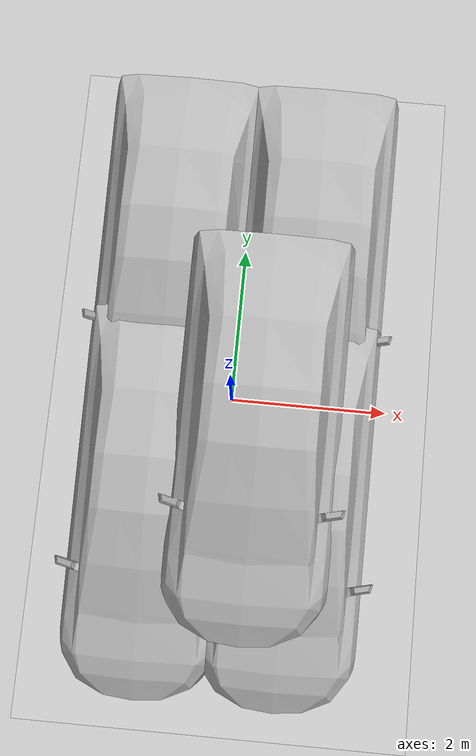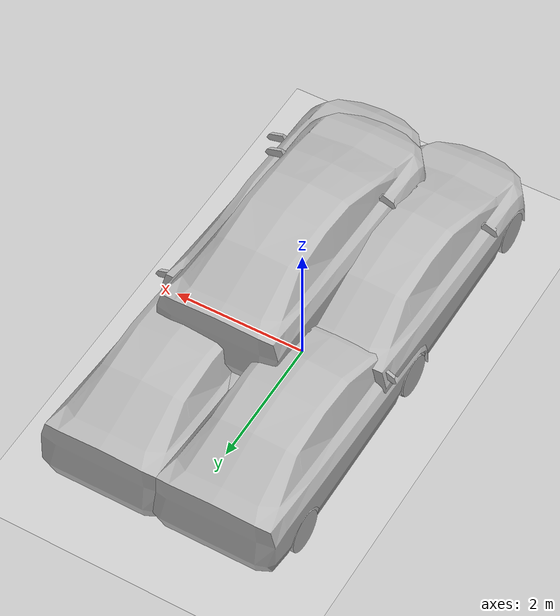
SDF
<?xml version="1.0" ?>
<sdf version="1.10">
    <world name="car_world">
        <physics name="1ms" type="ignored">
            <max_step_size>0.001</max_step_size>
            <real_time_factor>1.0</real_time_factor>
        </physics>
        <plugin
            filename="gz-sim-physics-system"
            name="gz::sim::systems::Physics">
        </plugin>
        <plugin
            filename="gz-sim-user-commands-system"
            name="gz::sim::systems::UserCommands">
        </plugin>
        <plugin
            filename="gz-sim-scene-broadcaster-system"
            name="gz::sim::systems::SceneBroadcaster">
        </plugin>

        <light type="directional" name="sun">
            <cast_shadows>true</cast_shadows>
            <pose>0 0 10 0 0 0</pose>
            <diffuse>0.8 0.8 0.8 1</diffuse>
            <specular>0.2 0.2 0.2 1</specular>
            <attenuation>
                <range>1000</range>
                <constant>0.9</constant>
                <linear>0.01</linear>
                <quadratic>0.001</quadratic>
            </attenuation>
            <direction>-0.5 0.1 -0.9</direction>
        </light>

        <model name="ground_plane">
            <static>true</static>
            <link name="link">
                <collision name="collision">
                <geometry>
                    <plane>
                    <normal>0 0 1</normal>
                    </plane>
                </geometry>
                </collision>
                <visual name="visual">
                <geometry>
                    <plane>
                    <normal>0 0 1</normal>
                    <size>100 100</size>
                    </plane>
                </geometry>
                <material>
                    <ambient>0.8 0.8 0.8 1</ambient>
                    <diffuse>0.8 0.8 0.8 1</diffuse>
                    <specular>0.8 0.8 0.8 1</specular>
                </material>
                </visual>
            </link>
        </model>

        <include>
            <uri>./prius_hybrid</uri>
        </include>
    </world>
</sdf>

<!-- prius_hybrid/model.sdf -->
<sdf version="1.6">
  <model name="prius_hybrid">
    <pose>0 0 0.03 0 0 0</pose>
    <!-- Ackermann Steering -->
    <plugin
      filename="gz-sim-ackermann-steering-system"
      name="gz::sim::systems::AckermannSteering">
      <left_joint>front_left_wheel_joint</left_joint>
      <left_joint>rear_left_wheel_joint</left_joint>
      <right_joint>front_right_wheel_joint</right_joint>
      <right_joint>rear_right_wheel_joint</right_joint>
      <left_steering_joint>front_left_wheel_steering_joint</left_steering_joint>
      <right_steering_joint>front_right_wheel_steering_joint</right_steering_joint>
      <kingpin_width>2.0</kingpin_width>
      <steering_limit>0.5</steering_limit>
      <wheel_base>2.86</wheel_base>
      <wheel_separation>1.52</wheel_separation>
      <wheel_radius>0.31265</wheel_radius>
      <min_velocity>-1</min_velocity>
      <max_velocity>1</max_velocity>
      <min_acceleration>-3</min_acceleration>
      <max_acceleration>3</max_acceleration>
    </plugin>
    <!-- Moving Forward-->
    <plugin filename="gz-sim-triggered-publisher-system"
      name="gz::sim::systems::TriggeredPublisher">
      <input type="gz.msgs.Int32" topic="/keyboard/keypress">
        <match field="data">16777235</match>
      </input>
      <output type="gz.msgs.Twist" topic="/cmd_vel">
        linear: {x: 0.5}, angular: {z: 0.0}
      </output>
    </plugin>
    <!-- Moving Backward-->
    <plugin filename="gz-sim-triggered-publisher-system"
      name="gz::sim::systems::TriggeredPublisher">
      <input type="gz.msgs.Int32" topic="/keyboard/keypress">
        <match field="data">16777237</match>
      </input>
      <output type="gz.msgs.Twist" topic="/cmd_vel">
        linear: {x: -0.5}, angular: {z: 0.0}
      </output>
    </plugin>
    <!-- Moving Left-->
    <plugin filename="gz-sim-triggered-publisher-system"
      name="gz::sim::systems::TriggeredPublisher">
      <input type="gz.msgs.Int32" topic="/keyboard/keypress">
        <match field="data">16777234</match>
      </input>
      <output type="gz.msgs.Twist" topic="/cmd_vel">
        linear: {x: 0.0}, angular: {z: 0.5}
      </output>
    </plugin>
    <!-- Moving Right-->
    <plugin filename="gz-sim-triggered-publisher-system"
      name="gz::sim::systems::TriggeredPublisher">
      <input type="gz.msgs.Int32" topic="/keyboard/keypress">
        <match field="data">16777236</match>
      </input>
      <output type="gz.msgs.Twist" topic="/cmd_vel">
        linear: {x: 0.0}, angular: {z: -0.5}
      </output>
    </plugin>

    <link name="chassis">
      <inertial>
        <mass>1326.0</mass>
        <pose>0 -0.266 0.48 0 0 0</pose>
        <inertia>
          <ixx>2581.13354740</ixx>
          <ixy>0.0</ixy>
          <iyy>591.30846112</iyy>
          <ixz>0.0</ixz>
          <iyz>0.0</iyz>
          <izz>2681.95008628</izz>
        </inertia>
      </inertial>

      <visual name="chassis_visual">
        <geometry>
          <mesh>
            <uri>model://prius_hybrid/meshes/Hybrid.obj</uri>
            <scale>0.01 0.01 0.01</scale>
            <submesh>
              <name>Hybrid</name>
              <center>false</center>
            </submesh>
          </mesh>
        </geometry>
      </visual>

      <visual name="interior_visual">
        <geometry>
          <mesh>
            <uri>model://prius_hybrid/meshes/Hybrid.obj</uri>
            <scale>0.01 0.01 0.01</scale>
            <submesh>
              <name>Hybrid_Interior</name>
              <center>false</center>
            </submesh>
          </mesh>
        </geometry>
      </visual>

      <visual name="windows_visual">
        <geometry>
          <mesh>
            <uri>model://prius_hybrid/meshes/Hybrid.obj</uri>
            <scale>0.01 0.01 0.01</scale>
            <submesh>
              <name>Hybrid_Windows</name>
              <center>false</center>
            </submesh>
          </mesh>
        </geometry>
      </visual>

      <collision name="chassis">
        <pose>0.0 0.05 0.625 0 0 0</pose>
        <geometry>
          <box>
            <size>1.7526 2.1 0.95</size>
          </box>
        </geometry>
      </collision>

      <collision name="front_bumper">
        <pose>0.0 -2.0 0.458488 0.0 0 0</pose>
        <geometry>
          <box>
            <size>1.337282 0.48 0.566691</size>
          </box>
        </geometry>
      </collision>

      <collision name="hood">
        <pose>0.0 -1.900842 0.676305 0.341247 0 0</pose>
        <geometry>
          <box>
            <size>1.597968 0.493107 0.265468</size>
          </box>
        </geometry>
      </collision>

      <collision name="windshield">
        <pose>0.0 -0.875105 1.032268 0.335476 0 0</pose>
        <geometry>
          <box>
            <size>1.168381 1.654253 0.272347</size>
          </box>
        </geometry>
      </collision>

      <collision name="top_front">
        <pose>0.0 0.161236 1.386042 0.135030 0 0</pose>
        <geometry>
          <box>
            <size>1.279154 0.625988 0.171868</size>
          </box>
        </geometry>
      </collision>

      <collision name="top_rear">
        <pose>0.0 0.817696 1.360069 -0.068997 0 0</pose>
        <geometry>
          <box>
            <size>1.285130 0.771189 0.226557</size>
          </box>
        </geometry>
      </collision>

      <collision name="rear_window">
        <pose>0.0 1.640531 1.175126 -0.262017 0 0</pose>
        <geometry>
          <box>
            <size>1.267845 1.116344 0.244286</size>
          </box>
        </geometry>
      </collision>

      <collision name="trunk">
        <pose>0.0 1.637059 0.888180 0.0 0 0</pose>
        <geometry>
          <box>
            <size>1.788064 1.138988 0.482746</size>
          </box>
        </geometry>
      </collision>

      <collision name="back_bumper">
        <pose>0.0 2.054454 0.577870 0.0 0 0</pose>
        <geometry>
          <box>
            <size>1.781650 0.512093 0.581427</size>
          </box>
        </geometry>
      </collision>
    </link>

    <link name="steering_wheel">
      <pose>0.357734 -0.627868 0.988243 -1.302101 0 0</pose>
      <inertial>
        <mass>1.0</mass>
        <inertia>
          <ixx>0.14583300</ixx>
          <ixy>0</ixy>
          <ixz>0</ixz>
          <iyy>0.14583300</iyy>
          <iyz>0</iyz>
          <izz>0.12500000</izz>
        </inertia>
      </inertial>
      <collision name="collision">
        <geometry>
          <cylinder>
            <radius>0.178172</radius>
            <length>0.041845</length>
          </cylinder>
        </geometry>
        <surface>
          <contact>
            <ode>
              <min_depth>0.003</min_depth>
            </ode>
          </contact>
        </surface>
      </collision>
      <visual name="visual">
        <pose>0 0 0 1.302101 0 0</pose>
        <geometry>
          <mesh>
            <uri>model://prius_hybrid/meshes/Hybrid.obj</uri>
            <scale>0.01 0.01 0.01</scale>
            <submesh>
              <name>Steering_Wheel</name>
              <center>true</center>
            </submesh>
          </mesh>
        </geometry>
      </visual>
    </link>

    <link name="front_left_wheel">
      <pose>0.76 -1.41 0.3 0 0 0</pose>
      <inertial>
        <mass>11</mass>
        <inertia>
          <ixx>0.58631238</ixx>
          <ixy>0.0</ixy>
          <iyy>0.33552910</iyy>
          <ixz>0.0</ixz>
          <iyz>0.0</iyz>
          <izz>0.33552910</izz>
        </inertia>
      </inertial>

      <visual name="visual">
        <pose>0.04 0.0 0.0 0 0 0</pose>
        <geometry>
          <mesh>
            <uri>model://prius_hybrid/meshes/Hybrid.obj</uri>
            <scale>0.01 0.01 0.01</scale>
            <submesh>
              <name>Wheel_Front_Left_</name>
              <center>true</center>
            </submesh>
          </mesh>
        </geometry>
      </visual>

      <collision name="collision">
        <pose>0.0 0.0 0.0 0 1.5707963267948966 0</pose>
        <geometry>
          <sphere>
            <radius>0.31265</radius>
          </sphere>
        </geometry>
        <surface>
          <friction>
            <ode>
              <mu>0.9</mu>
              <mu2>0.9</mu2>
              <slip1>0.0</slip1>
              <slip2>0.0</slip2>
            </ode>
          </friction>
          <contact>
            <ode>
              <min_depth>0.001</min_depth>
              <kp>1e9</kp>
            </ode>
          </contact>
        </surface>

      </collision>
    </link>

    <link name="front_left_wheel_steering_link">
      <pose>0.76 -1.41 0.3 0 0 0</pose>
      <inertial>
        <mass>0.5</mass>
        <inertia>
          <ixx>0.0153</ixx>
          <iyy>0.025</iyy>
          <izz>0.0153</izz>
        </inertia>
      </inertial>
    </link>

    <link name="front_right_wheel">
      <pose>-0.76 -1.41 0.3 0 0 0</pose>
      <inertial>
        <mass>11</mass>
        <inertia>
          <ixx>0.58631238</ixx>
          <ixy>0.0</ixy>
          <iyy>0.33552910</iyy>
          <ixz>0.0</ixz>
          <iyz>0.0</iyz>
          <izz>0.33552910</izz>
        </inertia>
      </inertial>
      <visual name="visual">
        <pose>-0.04 0.0 0.0 0 0 0</pose>
        <pose>0 0 0.0 0 0 0</pose>
        <geometry>
          <mesh>
            <uri>model://prius_hybrid/meshes/Hybrid.obj</uri>
            <scale>0.01 0.01 0.01</scale>
            <submesh>
              <name>Wheel_Front_Right</name>
              <center>true</center>
            </submesh>
          </mesh>
        </geometry>
      </visual>

      <collision name="collision">
        <pose>0.0 0.0 0.0 0 1.5707963267948966 0</pose>
        <geometry>
          <sphere>
            <radius>0.31265</radius>
          </sphere>
        </geometry>
        <surface>
          <friction>
            <ode>
              <mu>0.9</mu>
              <mu2>0.9</mu2>
              <slip1>0.0</slip1>
              <slip2>0.0</slip2>
            </ode>
          </friction>
          <contact>
            <ode>
              <min_depth>0.001</min_depth>
              <kp>1e9</kp>
            </ode>
          </contact>
        </surface>

      </collision>
    </link>

    <link name="front_right_wheel_steering_link">
      <pose>-0.76 -1.41 0.3 0 0 0</pose>
      <inertial>
        <mass>0.5</mass>
        <inertia>
          <ixx>0.0153</ixx>
          <iyy>0.025</iyy>
          <izz>0.0153</izz>
        </inertia>
      </inertial>
    </link>

    <link name="rear_left_wheel">
      <pose>0.786 1.45 0.3 0 0 0</pose>
      <inertial>
        <mass>11</mass>
        <inertia>
          <ixx>0.58631238</ixx>
          <ixy>0.0</ixy>
          <iyy>0.33552910</iyy>
          <ixz>0.0</ixz>
          <iyz>0.0</iyz>
          <izz>0.33552910</izz>
        </inertia>
      </inertial>

      <visual name="visual">
        <pose>0.04 0.0 0.0 0 0 0</pose>
        <geometry>
          <mesh>
            <uri>model://prius_hybrid/meshes/Hybrid.obj</uri>
            <scale>0.01 0.01 0.01</scale>
            <submesh>
              <name>Wheel_Front_Left_</name>
              <center>true</center>
            </submesh>
          </mesh>
        </geometry>
      </visual>

      <collision name="collision">
        <pose>0.0 0.0 0.0 0 1.5707963267948966 0</pose>
        <geometry>
          <sphere>
            <radius>0.31265</radius>
          </sphere>
        </geometry>
        <surface>
          <friction>
            <ode>
              <mu>1.1</mu>
              <mu2>1.1</mu2>
              <slip1>0.0</slip1>
              <slip2>0.0</slip2>
            </ode>
          </friction>
          <contact>
            <ode>
              <min_depth>0.001</min_depth>
              <kp>1e9</kp>
            </ode>
          </contact>
        </surface>

      </collision>
    </link>

    <link name="rear_right_wheel">
      <pose>-0.786 1.45 0.3 0 0 0</pose>
      <inertial>
        <mass>11</mass>
        <inertia>
          <ixx>0.58631238</ixx>
          <ixy>0.0</ixy>
          <iyy>0.33552910</iyy>
          <ixz>0.0</ixz>
          <iyz>0.0</iyz>
          <izz>0.33552910</izz>
        </inertia>
      </inertial>
      <visual name="visual">
        <pose>-0.04 0.0 0.0 0 0 0</pose>
        <geometry>
          <mesh>
            <uri>model://prius_hybrid/meshes/Hybrid.obj</uri>
            <scale>0.01 0.01 0.01</scale>
            <submesh>
              <name>Wheel_Front_Right</name>
              <center>true</center>
            </submesh>
          </mesh>
        </geometry>
      </visual>

      <collision name="collision">
        <pose>0.0 0.0 0.0 0 1.5707963267948966 0</pose>
        <geometry>
          <sphere>
            <radius>0.31265</radius>
          </sphere>
        </geometry>
        <surface>
          <friction>
            <ode>
              <mu>1.1</mu>
              <mu2>1.1</mu2>
              <slip1>0.0</slip1>
              <slip2>0.0</slip2>
            </ode>
          </friction>
          <contact>
            <ode>
              <min_depth>0.001</min_depth>
              <kp>1e9</kp>
            </ode>
          </contact>
        </surface>
      </collision>
    </link>

    <joint type="revolute" name="front_left_wheel_steering_joint">
      <pose>0 0 0 -0.08726646259971647 0 0</pose>
      <child>front_left_wheel_steering_link</child>
      <parent>chassis</parent>
      <axis>
        <xyz>0 0 1</xyz>
        <limit>
          <!-- +- 50 degrees -->
          <lower>-0.8727</lower>
          <upper>0.8727</upper>
          <velocity>1.0</velocity>
          <effort>25</effort>
        </limit>
      </axis>
    </joint>

    <joint name='front_left_wheel_joint' type='revolute'>
      <parent>front_left_wheel_steering_link</parent>
      <child>front_left_wheel</child>
      <axis>
        <xyz>0 0 1</xyz>
        <limit>
          <lower>-1.79769e+308</lower>
          <upper>1.79769e+308</upper>
        </limit>
      </axis>
    </joint>

    <joint type="revolute" name="front_right_wheel_steering_joint">
      <pose>0 0 0 -0.08726646259971647 0 0</pose>
      <child>front_right_wheel_steering_link</child>
      <parent>chassis</parent>
      <axis>
        <xyz>0 0 1</xyz>
        <limit>
          <!-- +- 50 degrees -->
          <lower>-0.8727</lower>
          <upper>0.8727</upper>
        </limit>
      </axis>
    </joint>

    <joint name='front_right_wheel_joint' type='revolute'>
      <parent>front_right_wheel_steering_link</parent>
      <child>front_right_wheel</child>
      <axis>
        <xyz>0 0 1</xyz>
        <limit>
          <lower>-1.79769e+308</lower>
          <upper>1.79769e+308</upper>
        </limit>
      </axis>
    </joint>

    <link name="rear_axle">
      <pose>0 1.45 0.3 0 0 0</pose>
      <inertial>
        <mass>30.0</mass>
        <inertia>
          <ixx>0.08437499999999999</ixx>
          <ixy>0.0</ixy>
          <iyy>4.64581</iyy>
          <ixz>0.0</ixz>
          <iyz>0.0</iyz>
          <izz>4.64581</izz>
        </inertia>
      </inertial>
      <visual name="visual">
        <pose>0.0 0.0 0.0 0 1.5707963267948966 0</pose>
        <geometry>
          <cylinder>
            <length>1.357</length>
            <radius>0.075</radius>
          </cylinder>
        </geometry>
        <material>
          <script>
            <name>Gazebo/Grey</name>
            <uri>file://media/materials/scripts/gazebo.material</uri>
          </script>
        </material>
      </visual>
    </link>

    <joint type="revolute" name="rear_axle_joint">
      <child>rear_axle</child>
      <parent>chassis</parent>
      <axis>
        <xyz>0 1 0</xyz>
        <limit>
          <lower>-0.05089058524173028</lower>
          <upper>0.05089058524173028</upper>
        </limit>
        <dynamics>
          <spring_stiffness>20000.0</spring_stiffness>
          <damping>2000.0</damping>
        </dynamics>
      </axis>
    </joint>
    <joint type="revolute" name="rear_left_wheel_joint">
      <child>rear_left_wheel</child>
      <parent>rear_axle</parent>
      <axis>
        <xyz>1 0 0</xyz>
        <dynamics>
          <friction>12.031606150200002</friction>
        </dynamics>
      </axis>
    </joint>
    <joint type="revolute" name="rear_right_wheel_joint">
      <child>rear_right_wheel</child>
      <parent>rear_axle</parent>
      <axis>
        <xyz>1 0 0</xyz>
        <dynamics>
          <friction>12.031606150200002</friction>
        </dynamics>
      </axis>
    </joint>

    <joint name="steering_joint" type="revolute">
      <pose>-0.002 0 0 0 0 0</pose>
      <parent>chassis</parent>
      <child>steering_wheel</child>
      <axis>
        <xyz>0 0.964095 0.265556</xyz>
        <limit>
          <lower>-7.85</lower>
          <upper>7.85</upper>
        </limit>
        <dynamics>
          <damping>1.0</damping>
        </dynamics>
        <use_parent_model_frame>true</use_parent_model_frame>
      </axis>
      <physics>
        <ode>
          <cfm_damping>1</cfm_damping>
        </ode>
      </physics>
    </joint>
  </model>

</sdf>
